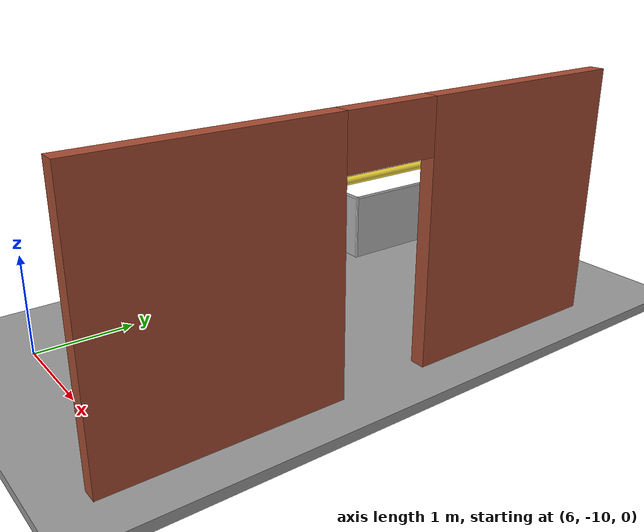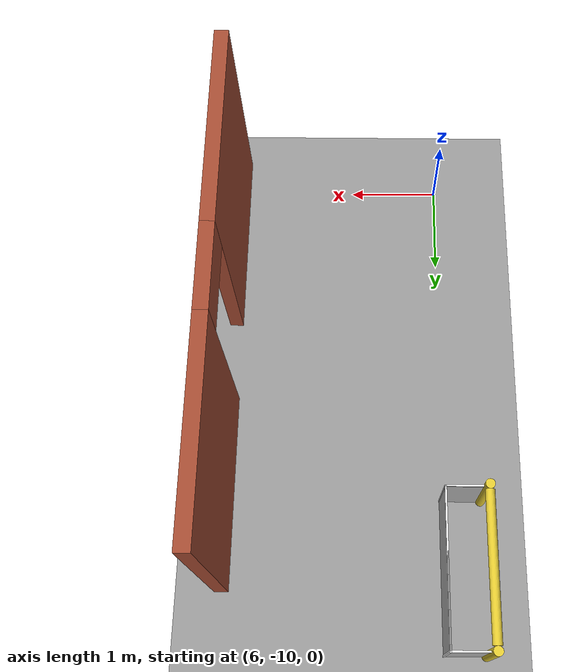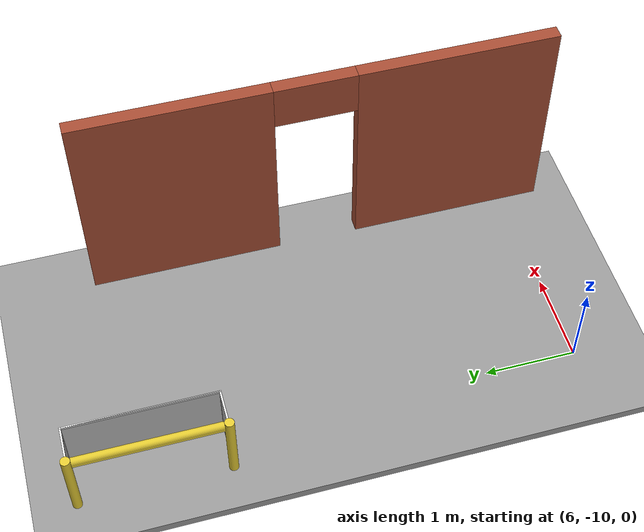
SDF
<sdf version="1.6">
 <world name="default">
  <model name="ground_plane">
   <static>1</static>
   <link name="link">
    <collision name="collision">
     <geometry><plane><normal>0 0 1</normal><size>100 100</size></plane></geometry>
     <surface>
      <contact><collide_bitmask>65535</collide_bitmask></contact>
      <friction><ode><mu>100</mu><mu2>50</mu2></ode></friction>
     </surface>
    </collision>
    <visual name="visual">
     <cast_shadows>0</cast_shadows>
     <geometry><plane><normal>0 0 1</normal><size>100 100</size></plane></geometry>
     <material>
      <script><uri>file://media/materials/scripts/gazebo.material</uri><name>Gazebo/Grey</name></script>
     </material>
    </visual>
   </link>
  </model>
  <model name="office">
   <pose>2.35048 -0.469027 0 0 -0 0</pose>
   <link name="Wall_23">
    <pose>5.99333 -7.30568 0 0 0 -1.57072</pose>
    <visual name="Wall_23_Visual_0">
     <pose>-1.55338 0 1.25 0 -0 0</pose>
     <geometry><box><size>2.14324 0.15 2.5</size></box></geometry>
     <material>
      <script><uri>file://media/materials/scripts/gazebo.material</uri><name>Gazebo/Bricks</name></script>
      <ambient>1 1 1 1</ambient>
     </material>
     <meta><layer>0</layer></meta>
    </visual>
    <collision name="Wall_23_Collision_0">
     <geometry><box><size>2.14324 0.15 2.5</size></box></geometry>
     <pose>-1.55338 0 1.25 0 -0 0</pose>
    </collision>
    <visual name="Wall_23_Visual_1">
     <pose>1.52162 0 1.25 0 -0 0</pose>
     <geometry><box><size>2.20676 0.15 2.5</size></box></geometry>
     <material>
      <script><uri>file://media/materials/scripts/gazebo.material</uri><name>Gazebo/Bricks</name></script>
      <ambient>1 1 1 1</ambient>
     </material>
     <meta><layer>0</layer></meta>
    </visual>
    <collision name="Wall_23_Collision_1">
     <geometry><box><size>2.20676 0.15 2.5</size></box></geometry>
     <pose>1.52162 0 1.25 0 -0 0</pose>
    </collision>
    <visual name="Wall_23_Visual_2">
     <pose>-0.031758 0 2.25 0 -0 0</pose>
     <geometry><box><size>0.9 0.15 0.5</size></box></geometry>
     <material>
      <script><uri>file://media/materials/scripts/gazebo.material</uri><name>Gazebo/Bricks</name></script>
      <ambient>1 1 1 1</ambient>
     </material>
     <meta><layer>0</layer></meta>
    </visual>
    <collision name="Wall_23_Collision_2">
     <geometry><box><size>0.9 0.15 0.5</size></box></geometry>
     <pose>-0.031758 0 2.25 0 -0 0</pose>
    </collision>
   </link>
   <static>1</static>
  </model>
  <model name="ground_plane_0">
   <static>1</static>
   <link name="link">
    <collision name="collision">
     <geometry><plane><normal>0 0 1</normal><size>100 100</size></plane></geometry>
     <surface><friction><ode><mu>100</mu><mu2>50</mu2></ode></friction></surface>
    </collision>
    <visual name="visual">
     <cast_shadows>0</cast_shadows>
     <geometry><plane><normal>0 0 1</normal><size>100 100</size></plane></geometry>
     <material>
      <script><uri>file://media/materials/scripts/gazebo.material</uri><name>Gazebo/Grey</name></script>
     </material>
    </visual>
   </link>
   <pose>2.14378 -11.178 0 0 -0 0</pose>
  </model>
  <model name="RoboCup 2014 SPL Goal">
   <static>1</static>
   <link name="left_post">
    <pose>0 0.8 0.45 0 -0 0</pose>
    <collision name="collision">
     <geometry><cylinder><radius>0.05</radius><length>0.9</length></cylinder></geometry>
    </collision>
    <visual name="visual">
     <geometry><cylinder><radius>0.05</radius><length>0.9</length></cylinder></geometry>
     <material>
      <script><uri>file://media/materials/scripts/gazebo.material</uri><name>Gazebo/ZincYellow</name></script>
     </material>
    </visual>
   </link>
   <link name="left_support_horiz_lower">
    <pose>0.24 0.8 0.01 0 -0 0</pose>
    <collision name="collision"><geometry><box><size>0.38 0.02 0.02</size></box></geometry></collision>
    <visual name="visual">
     <geometry><box><size>0.38 0.02 0.02</size></box></geometry>
     <material>
      <script><uri>file://media/materials/scripts/gazebo.material</uri><name>Gazebo/White</name></script>
     </material>
    </visual>
   </link>
   <link name="left_support_horiz_upper">
    <pose>0.24 0.8 0.79 0 -0 0</pose>
    <collision name="collision"><geometry><box><size>0.38 0.02 0.02</size></box></geometry></collision>
    <visual name="visual">
     <geometry><box><size>0.38 0.02 0.02</size></box></geometry>
     <material>
      <script><uri>file://media/materials/scripts/gazebo.material</uri><name>Gazebo/White</name></script>
     </material>
    </visual>
   </link>
   <link name="left_support_vertical">
    <pose>0.44 0.8 0.4 3.14159 1.57079 3.14159</pose>
    <collision name="collision"><geometry><box><size>0.8 0.02 0.02</size></box></geometry></collision>
    <visual name="visual">
     <geometry><box><size>0.8 0.02 0.02</size></box></geometry>
     <material>
      <script><uri>file://media/materials/scripts/gazebo.material</uri><name>Gazebo/White</name></script>
     </material>
    </visual>
   </link>
   <link name="right_support_horiz_lower">
    <pose>0.24 -0.8 0.01 0 -0 0</pose>
    <collision name="collision"><geometry><box><size>0.38 0.02 0.02</size></box></geometry></collision>
    <visual name="visual">
     <geometry><box><size>0.38 0.02 0.02</size></box></geometry>
     <material>
      <script><uri>file://media/materials/scripts/gazebo.material</uri><name>Gazebo/White</name></script>
     </material>
    </visual>
   </link>
   <link name="right_support_horiz_upper">
    <pose>0.24 -0.8 0.79 0 -0 0</pose>
    <collision name="collision"><geometry><box><size>0.38 0.02 0.02</size></box></geometry></collision>
    <visual name="visual">
     <geometry><box><size>0.38 0.02 0.02</size></box></geometry>
     <material>
      <script><uri>file://media/materials/scripts/gazebo.material</uri><name>Gazebo/White</name></script>
     </material>
    </visual>
   </link>
   <link name="right_support_vertical">
    <pose>0.44 -0.8 0.4 3.14159 1.57079 3.14159</pose>
    <collision name="collision"><geometry><box><size>0.8 0.02 0.02</size></box></geometry></collision>
    <visual name="visual">
     <geometry><box><size>0.8 0.02 0.02</size></box></geometry>
     <material>
      <script><uri>file://media/materials/scripts/gazebo.material</uri><name>Gazebo/White</name></script>
     </material>
    </visual>
   </link>
   <link name="center_support_horiz_lower">
    <pose>0.44 0 0.01 3.14159 1.57079 3.14159</pose>
    <collision name="collision"><geometry><box><size>0.02 1.58 0.02</size></box></geometry></collision>
    <visual name="visual">
     <geometry><box><size>0.02 1.58 0.02</size></box></geometry>
     <material>
      <script><uri>file://media/materials/scripts/gazebo.material</uri><name>Gazebo/White</name></script>
     </material>
    </visual>
   </link>
   <link name="center_support_horiz_upper">
    <pose>0.44 0 0.79 3.14159 1.57079 3.14159</pose>
    <collision name="collision"><geometry><box><size>0.02 1.58 0.02</size></box></geometry></collision>
    <visual name="visual">
     <geometry><box><size>0.02 1.58 0.02</size></box></geometry>
     <material>
      <script><uri>file://media/materials/scripts/gazebo.material</uri><name>Gazebo/White</name></script>
     </material>
    </visual>
   </link>
   <link name="right_post">
    <pose>0 -0.8 0.45 0 -0 0</pose>
    <collision name="collision">
     <geometry><cylinder><radius>0.05</radius><length>0.9</length></cylinder></geometry>
    </collision>
    <visual name="visual">
     <geometry><cylinder><radius>0.05</radius><length>0.9</length></cylinder></geometry>
     <material>
      <script><uri>file://media/materials/scripts/gazebo.material</uri><name>Gazebo/ZincYellow</name></script>
     </material>
    </visual>
   </link>
   <link name="crossbar">
    <pose>0 0 0.85 1.57 1.57 0</pose>
    <collision name="collision">
     <geometry><cylinder><radius>0.05</radius><length>1.5</length></cylinder></geometry>
    </collision>
    <visual name="visual">
     <geometry><cylinder><radius>0.05</radius><length>1.5</length></cylinder></geometry>
     <material>
      <script><uri>file://media/materials/scripts/gazebo.material</uri><name>Gazebo/ZincYellow</name></script>
     </material>
    </visual>
   </link>
   <link name="center_net">
    <pose>0.44 0 0.4 0 -0 0</pose>
    <collision name="collision"><geometry><box><size>0.01 1.6 0.8</size></box></geometry></collision>
    <visual name="visual">
     <geometry><box><size>0.01 1.6 0.8</size></box></geometry>
     <material>
      <script>
       <uri>model://robocup09_spl_field/materials/scripts/</uri>
       <uri>model://robocup09_spl_field/materials/textures/</uri>
       <name>RoboCup/Net</name>
      </script>
     </material>
    </visual>
   </link>
   <link name="left_net">
    <pose>0.24 0.8 0.4 0 -0 0</pose>
    <collision name="collision"><geometry><box><size>0.38 0.01 0.76</size></box></geometry></collision>
    <visual name="visual">
     <geometry><box><size>0.38 0.01 0.76</size></box></geometry>
     <material>
      <script>
       <uri>model://robocup09_spl_field/materials/scripts/</uri>
       <uri>model://robocup09_spl_field/materials/textures/</uri>
       <name>RoboCup/Net</name>
      </script>
     </material>
    </visual>
   </link>
   <link name="right_net">
    <pose>0.24 -0.8 0.4 0 -0 0</pose>
    <collision name="collision"><geometry><box><size>0.38 0.01 0.76</size></box></geometry></collision>
    <visual name="visual">
     <geometry><box><size>0.38 0.01 0.76</size></box></geometry>
     <material>
      <script>
       <uri>model://robocup09_spl_field/materials/scripts/</uri>
       <uri>model://robocup09_spl_field/materials/textures/</uri>
       <name>RoboCup/Net</name>
      </script>
     </material>
    </visual>
   </link>
   <pose>5.59146 -5.3283 0 0 -0 0</pose>
  </model>
 </world>
</sdf>
